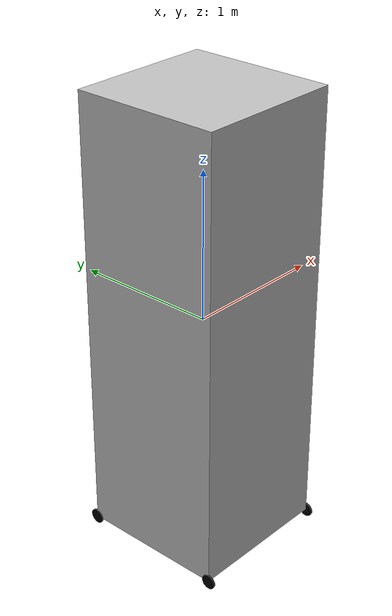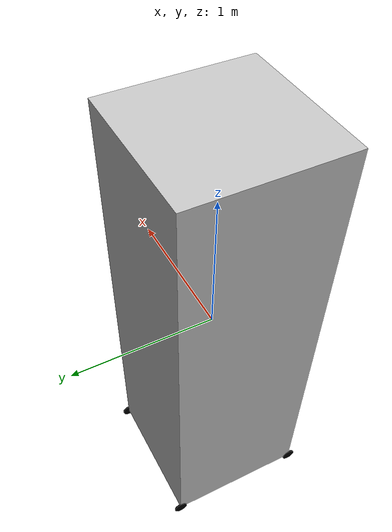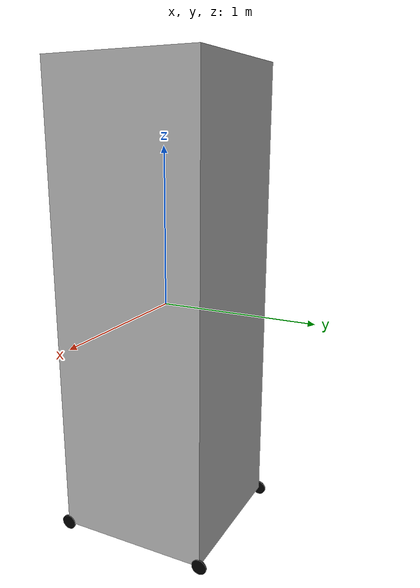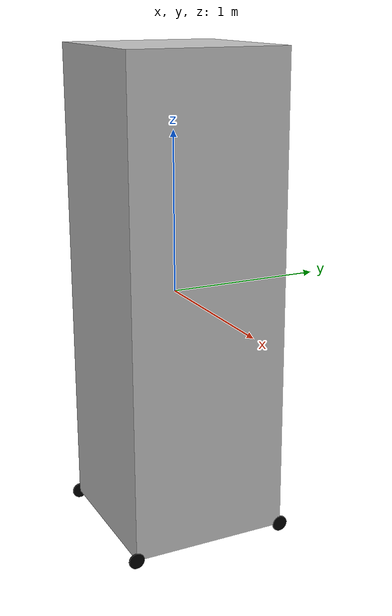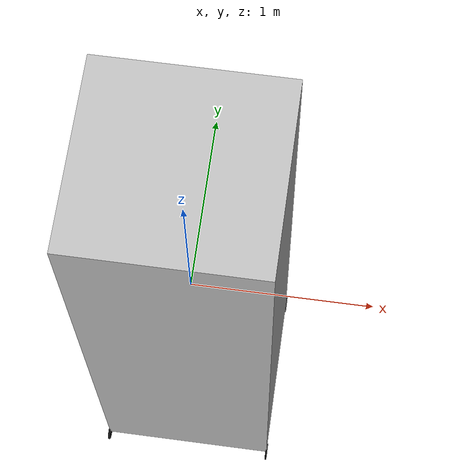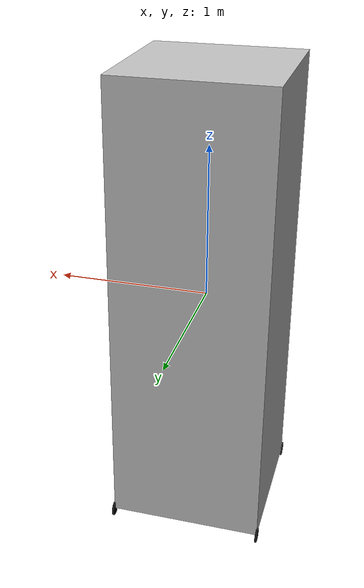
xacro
<?xml version="1.0" ?>
<robot name="car" xmlns:xacro="http://ros.org/wiki/xacro">

    <link name="base">

        <inertial>
            <mass value="2.0"/>
            <inertia ixx="1.66666665" iyy="1.666666665" izz="3.3333335" ixy="0" ixz="0" iyz="0"/>
        </inertial>

        <collision>

            <geometry>
                <box size="1 1 3"/>
            </geometry>

        </collision>

        <visual>
            <geometry>
                <box size="1 1 3"/>
            </geometry>

            <material name="silver">
                <color rgba="0.75 0.75 0.75 1"/>
            </material>
        </visual>

    </link>

    <link name="front_right_wheel">

        <inertial>
            <mass value="0.1"/>
            <inertia ixx="6.3333e-5" iyy="6.3333e-5" izz="0.000125" ixy="0" ixz="0" iyz="0"/>
        </inertial>
        <collision>
            <geometry>
                <cylinder length="0.01" radius="0.05"/>
            </geometry>
        </collision>

        <visual>
            <geometry>
                <cylinder length="0.01" radius="0.05"/>
            </geometry>
            <material name="black">
                <color rgba="0 0 0 1"/>
            </material>
        </visual>
    </link>

    <joint name="front_right_wheel_joint" type="continuous">
        <axis xyz="0 0 1"/>
        <parent link="base"/>
        <child link="front_right_wheel"/>
        <origin rpy="0 -1.5708 0" xyz="0.5 -0.5 -1.5"/>
    </joint>

    <link name="front_left_wheel">
         <inertial>
            <mass value="0.1"/>
            <inertia ixx="6.2708e-5" iyy="6.2708e-5" izz="0.000125" ixy="0" ixz="0" iyz="0"/>
        </inertial>
        <collision>
            <geometry>
                <cylinder length="0.01" radius="0.05"/>
            </geometry>
        </collision>

        <visual>
            <geometry>
                <cylinder length="0.01" radius="0.05"/>
            </geometry>
            <material name="black"/>
        </visual>
    </link>

    <joint name="front_left_wheel_joint" type="continuous">
        <axis xyz="0 0 1"/>
        <parent link="base"/>
        <child link="front_left_wheel"/>
        <origin rpy="0 -1.5708 0" xyz="0.5 0.5 -1.5"/>
    </joint>

    <link name="back_right_wheel">
         <inertial>
            <mass value="0.1"/>
            <inertia ixx="6.2708e-5" iyy="6.2708e-5" izz="0.000125" ixy="0" ixz="0" iyz="0"/>
        </inertial>
        <collision>
            <geometry>
                <cylinder length="0.01" radius="0.05"/>
            </geometry>
        </collision>

        <visual>
            <geometry>
                <cylinder length="0.01" radius="0.05"/>
            </geometry>
            <material name="black">
                <color rgba="0 0 0 1"/>
            </material>
        </visual>
    </link>

    <joint name="back_right_wheel_joint" type="continuous">
        <axis xyz="0 0 1"/>
        <parent link="base"/>
        <child link="back_right_wheel"/>
        <origin rpy="0 -1.5708 0" xyz="-0.5 -0.5 -1.5"/>
    </joint>

    <link name="back_left_wheel">
        <inertial>
            <mass value="0.1"/>
            <inertia ixx="6.2708e-5" iyy="6.2708e-5" izz="0.000125" ixy="0" ixz="0" iyz="0"/>
        </inertial>
        <collision>
            <geometry>
                <cylinder length="0.01" radius="0.05"/>
            </geometry>
        </collision>

        <visual>
            <geometry>
                <cylinder length="0.01" radius="0.05"/>
            </geometry>
            <material name="black"/>
        </visual>
    </link>

    <joint name="back_left_wheel_joint" type="continuous">
        <axis xyz="0 0 1"/>
        <parent link="base"/>
        <child link="back_left_wheel"/>
        <origin rpy="0 -1.5708 0" xyz="-0.5 0.5 -1.5"/>
    </joint>

    <!-- gazebo -->
    <gazebo reference="base">
        <material>Gazebo/Grey</material>
        <mu1>0.1</mu1>
        <mu2>0.1</mu2>
    </gazebo>
    <gazebo reference="back_left_wheel">
        <material>Gazebo/Black</material>
        <mu1>0.1</mu1>
        <mu2>0.1</mu2>
    </gazebo>
    <gazebo reference="back_right_wheel">
        <material>Gazebo/Black</material>
        <mu1>0.1</mu1>
        <mu2>0.1</mu2>
    </gazebo>
    <gazebo reference="front_left_wheel">
        <material>Gazebo/Black</material>
        <mu1>0.1</mu1>
        <mu2>0.1</mu2>
    </gazebo>
    <gazebo reference="front_right_wheel">
        <material>Gazebo/Black</material>
        <mu1>0.1</mu1>
        <mu2>0.1</mu2>
    </gazebo>

    <transmission name="back_left">
        <type>transmission_interface/SimpleTransmission</type>
        <joint name="back_left_wheel_joint">
            <hardwareInterface>hardware_interface/VelocityJointInterface</hardwareInterface>
            </joint>
        <actuator name="back_left_motor">
            <mechanicalReduction>100</mechanicalReduction>
        </actuator>
    </transmission>
    <transmission name="back_right">
        <type>transmission_interface/SimpleTransmission</type>
        <joint name="back_right_wheel_joint">
            <hardwareInterface>hardware_interface/VelocityJointInterface</hardwareInterface>
            </joint>
        <actuator name="back_right_motor">
            <mechanicalReduction>100</mechanicalReduction>
        </actuator>
    </transmission>
    <transmission name="front_left">
        <type>transmission_interface/SimpleTransmission</type>
        <joint name="front_left_wheel_joint">
            <hardwareInterface>hardware_interface/VelocityJointInterface</hardwareInterface>
            </joint>
        <actuator name="front_left_motor">
            <mechanicalReduction>100</mechanicalReduction>
        </actuator>
    </transmission>
    <transmission name="front_right">
        <type>transmission_interface/SimpleTransmission</type>
        <joint name="front_right_wheel_joint">
            <hardwareInterface>hardware_interface/VelocityJointInterface</hardwareInterface>
            </joint>
        <actuator name="front_right_motor">
            <mechanicalReduction>100</mechanicalReduction>
        </actuator>
    </transmission>

    <gazebo>
        <plugin name="gazebo_ros_control" filename="libgazebo_ros_control.so">
        <robotNamespace>/</robotNamespace>
        </plugin>
    </gazebo>

</robot>
